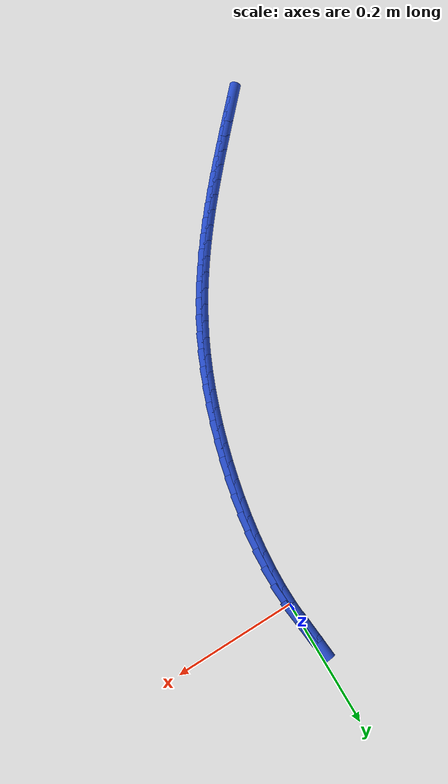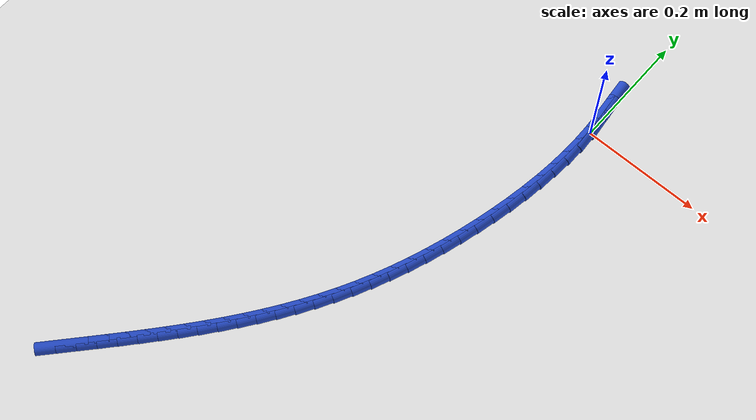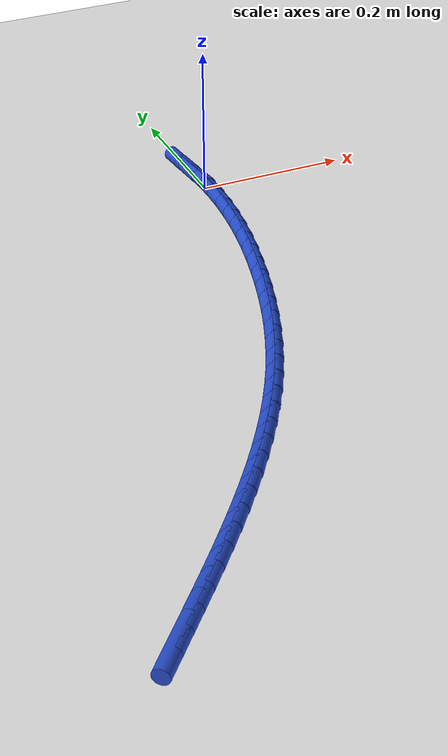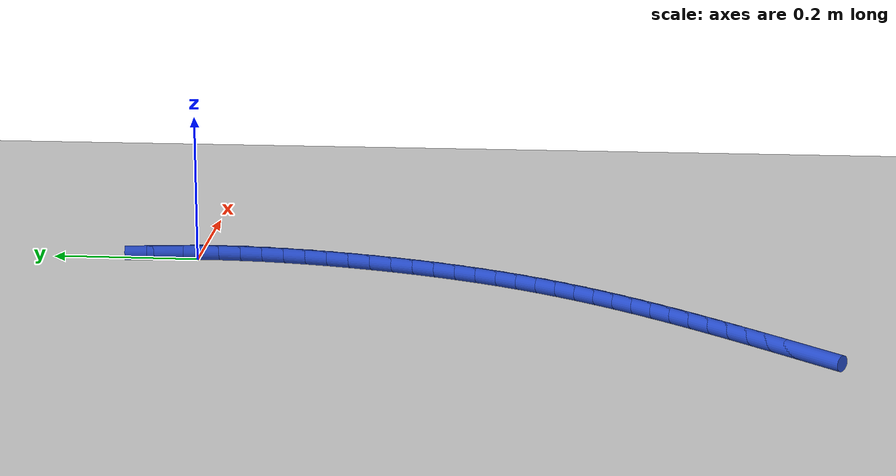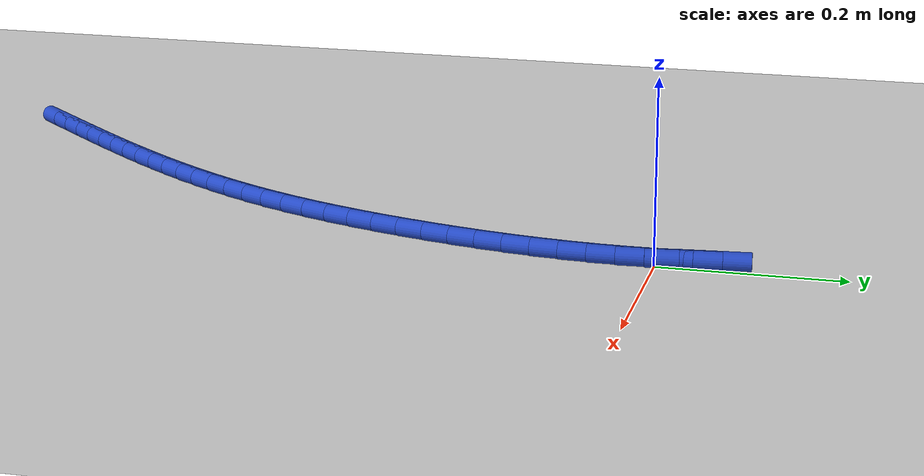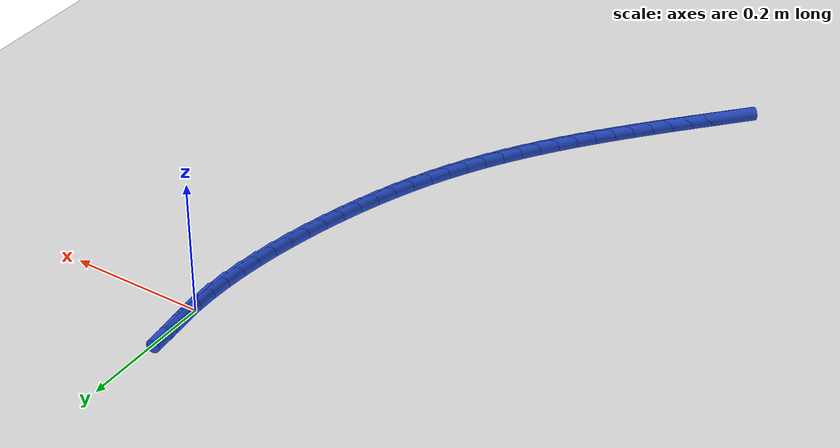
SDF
<sdf version="1.6">
 <world name="default">
  <model name="ground_plane">
   <static>1</static>
   <link name="link">
    <collision name="collision">
     <geometry><plane><normal>0 0 1</normal><size>100 100</size></plane></geometry>
     <surface><friction><ode><mu>100</mu><mu2>50</mu2></ode></friction></surface>
    </collision>
    <visual name="visual">
     <cast_shadows>0</cast_shadows>
     <geometry><plane><normal>0 0 1</normal><size>100 100</size></plane></geometry>
     <material>
      <script><uri>file://media/materials/scripts/gazebo.material</uri><name>Gazebo/WhiteGlow</name></script>
     </material>
    </visual>
   </link>
  </model>
  <model name="line">
   <link name="link_0">
    <pose>1.734723475976807e-18 -3.469446951953614e-17 0.01 0 1.57 -1.50605853895009</pose>
    <collision name="collision">
     <geometry><cylinder><radius>0.01</radius><length>0.08</length></cylinder></geometry>
    </collision>
    <visual name="visual">
     <material>
      <script><name>Gazebo/Blue</name><uri>file://media/materials/scripts/gazebo.material</uri></script>
     </material>
     <geometry><cylinder><radius>0.01</radius><length>0.08</length></cylinder></geometry>
    </visual>
   </link>
   <link name="link_1">
    <pose>-0.001937820754875449 0.029891550811262525 0.01 0 1.57 -1.4679281092160998</pose>
    <collision name="collision">
     <geometry><cylinder><radius>0.01</radius><length>0.08</length></cylinder></geometry>
    </collision>
    <visual name="visual">
     <material>
      <script><name>Gazebo/Blue</name><uri>file://media/materials/scripts/gazebo.material</uri></script>
     </material>
     <geometry><cylinder><radius>0.01</radius><length>0.08</length></cylinder></geometry>
    </visual>
   </link>
   <link name="link_250">
    <pose>-0.3695491545000588 -0.7978656069063355 0.01 0 1.57 0.8388789615420996</pose>
    <collision name="collision">
     <geometry><cylinder><radius>0.01</radius><length>0.08</length></cylinder></geometry>
    </collision>
    <visual name="visual">
     <material>
      <script><name>Gazebo/Blue</name><uri>file://media/materials/scripts/gazebo.material</uri></script>
     </material>
     <geometry><cylinder><radius>0.01</radius><length>0.08</length></cylinder></geometry>
    </visual>
   </link>
   <link name="link_251">
    <pose>-0.3489722872065502 -0.7749611015066138 0.01 0 1.57 0.8412058219241347</pose>
    <collision name="collision">
     <geometry><cylinder><radius>0.01</radius><length>0.08</length></cylinder></geometry>
    </collision>
    <visual name="visual">
     <material>
      <script><name>Gazebo/Blue</name><uri>file://media/materials/scripts/gazebo.material</uri></script>
     </material>
     <geometry><cylinder><radius>0.01</radius><length>0.08</length></cylinder></geometry>
    </visual>
   </link>
   <link name="link_252">
    <pose>-0.3286190941781523 -0.7521992581549323 0.01 0 1.57 0.8458893004438816</pose>
    <collision name="collision">
     <geometry><cylinder><radius>0.01</radius><length>0.08</length></cylinder></geometry>
    </collision>
    <visual name="visual">
     <material>
      <script><name>Gazebo/Blue</name><uri>file://media/materials/scripts/gazebo.material</uri></script>
     </material>
     <geometry><cylinder><radius>0.01</radius><length>0.08</length></cylinder></geometry>
    </visual>
   </link>
   <link name="link_253">
    <pose>-0.3085309796343642 -0.729520996869916 0.01 0 1.57 0.8529774565362893</pose>
    <collision name="collision">
     <geometry><cylinder><radius>0.01</radius><length>0.08</length></cylinder></geometry>
    </collision>
    <visual name="visual">
     <material>
      <script><name>Gazebo/Blue</name><uri>file://media/materials/scripts/gazebo.material</uri></script>
     </material>
     <geometry><cylinder><radius>0.01</radius><length>0.08</length></cylinder></geometry>
    </visual>
   </link>
   <link name="link_254">
    <pose>-0.28874934779468264 -0.7068672376701868 0.01 0 1.57 0.8625106540294004</pose>
    <collision name="collision">
     <geometry><cylinder><radius>0.01</radius><length>0.08</length></cylinder></geometry>
    </collision>
    <visual name="visual">
     <material>
      <script><name>Gazebo/Blue</name><uri>file://media/materials/scripts/gazebo.material</uri></script>
     </material>
     <geometry><cylinder><radius>0.01</radius><length>0.08</length></cylinder></geometry>
    </visual>
   </link>
   <link name="link_255">
    <pose>-0.2693156028786056 -0.6841789005743684 0.01 0 1.57 0.8745197772604651</pose>
    <collision name="collision">
     <geometry><cylinder><radius>0.01</radius><length>0.08</length></cylinder></geometry>
    </collision>
    <visual name="visual">
     <material>
      <script><name>Gazebo/Blue</name><uri>file://media/materials/scripts/gazebo.material</uri></script>
     </material>
     <geometry><cylinder><radius>0.01</radius><length>0.08</length></cylinder></geometry>
    </visual>
   </link>
   <link name="link_256">
    <pose>-0.2502711491056303 -0.6613969056010836 0.01 0 1.57 0.8890239883717835</pose>
    <collision name="collision">
     <geometry><cylinder><radius>0.01</radius><length>0.08</length></cylinder></geometry>
    </collision>
    <visual name="visual">
     <material>
      <script><name>Gazebo/Blue</name><uri>file://media/materials/scripts/gazebo.material</uri></script>
     </material>
     <geometry><cylinder><radius>0.01</radius><length>0.08</length></cylinder></geometry>
    </visual>
   </link>
   <link name="link_257">
    <pose>-0.23165739069525473 -0.6384621727689558 0.01 0 1.57 0.9060280472848489</pose>
    <collision name="collision">
     <geometry><cylinder><radius>0.01</radius><length>0.08</length></cylinder></geometry>
    </collision>
    <visual name="visual">
     <material>
      <script><name>Gazebo/Blue</name><uri>file://media/materials/scripts/gazebo.material</uri></script>
     </material>
     <geometry><cylinder><radius>0.01</radius><length>0.08</length></cylinder></geometry>
    </visual>
   </link>
   <link name="link_258">
    <pose>-0.21351573186697637 -0.615315622096608 0.01 0 1.57 0.925519259029566</pose>
    <collision name="collision">
     <geometry><cylinder><radius>0.01</radius><length>0.08</length></cylinder></geometry>
    </collision>
    <visual name="visual">
     <material>
      <script><name>Gazebo/Blue</name><uri>file://media/materials/scripts/gazebo.material</uri></script>
     </material>
     <geometry><cylinder><radius>0.01</radius><length>0.08</length></cylinder></geometry>
    </visual>
   </link>
   <link name="link_259">
    <pose>-0.19588757684029282 -0.5918981736026632 0.01 0 1.57 0.9474641675701972</pose>
    <collision name="collision">
     <geometry><cylinder><radius>0.01</radius><length>0.08</length></cylinder></geometry>
    </collision>
    <visual name="visual">
     <material>
      <script><name>Gazebo/Blue</name><uri>file://media/materials/scripts/gazebo.material</uri></script>
     </material>
     <geometry><cylinder><radius>0.01</radius><length>0.08</length></cylinder></geometry>
    </visual>
   </link>
   <link name="link_260">
    <pose>-0.17881432983470186 -0.5681507473057452 0.01 0 1.57 0.9718051789377452</pose>
    <collision name="collision">
     <geometry><cylinder><radius>0.01</radius><length>0.08</length></cylinder></geometry>
    </collision>
    <visual name="visual">
     <material>
      <script><name>Gazebo/Blue</name><uri>file://media/materials/scripts/gazebo.material</uri></script>
     </material>
     <geometry><cylinder><radius>0.01</radius><length>0.08</length></cylinder></geometry>
    </visual>
   </link>
   <link name="link_261">
    <pose>-0.1623373950697005 -0.5440142632244757 0.01 0 1.57 0.9984573640017742</pose>
    <collision name="collision">
     <geometry><cylinder><radius>0.01</radius><length>0.08</length></cylinder></geometry>
    </collision>
    <visual name="visual">
     <material>
      <script><name>Gazebo/Blue</name><uri>file://media/materials/scripts/gazebo.material</uri></script>
     </material>
     <geometry><cylinder><radius>0.01</radius><length>0.08</length></cylinder></geometry>
    </visual>
   </link>
   <link name="link_262">
    <pose>-0.1464981767647875 -0.51942964137748 0.01 0 1.57 1.0273057532964527</pose>
    <collision name="collision">
     <geometry><cylinder><radius>0.01</radius><length>0.08</length></cylinder></geometry>
    </collision>
    <visual name="visual">
     <material>
      <script><name>Gazebo/Blue</name><uri>file://media/materials/scripts/gazebo.material</uri></script>
     </material>
     <geometry><cylinder><radius>0.01</radius><length>0.08</length></cylinder></geometry>
    </visual>
   </link>
   <link name="link_263">
    <pose>-0.13133807913945986 -0.49433780178338005 0.01 0 1.57 1.0582034798217133</pose>
    <collision name="collision">
     <geometry><cylinder><radius>0.01</radius><length>0.08</length></cylinder></geometry>
    </collision>
    <visual name="visual">
     <material>
      <script><name>Gazebo/Blue</name><uri>file://media/materials/scripts/gazebo.material</uri></script>
     </material>
     <geometry><cylinder><radius>0.01</radius><length>0.08</length></cylinder></geometry>
    </visual>
   </link>
   <link name="link_264">
    <pose>-0.11689850641321536 -0.4686796644607993 0.01 0 1.57 1.0909711351671583</pose>
    <collision name="collision">
     <geometry><cylinder><radius>0.01</radius><length>0.08</length></cylinder></geometry>
    </collision>
    <visual name="visual">
     <material>
      <script><name>Gazebo/Blue</name><uri>file://media/materials/scripts/gazebo.material</uri></script>
     </material>
     <geometry><cylinder><radius>0.01</radius><length>0.08</length></cylinder></geometry>
    </visual>
   </link>
   <link name="link_265">
    <pose>-0.10322086280555154 -0.4423961494283606 0.01 0 1.57 1.1252254520843825</pose>
    <collision name="collision">
     <geometry><cylinder><radius>0.01</radius><length>0.08</length></cylinder></geometry>
    </collision>
    <visual name="visual">
     <material>
      <script><name>Gazebo/Blue</name><uri>file://media/materials/scripts/gazebo.material</uri></script>
     </material>
     <geometry><cylinder><radius>0.01</radius><length>0.08</length></cylinder></geometry>
    </visual>
   </link>
   <link name="link_266">
    <pose>-0.09034409138142369 -0.4154349647176527 0.01 0 1.57 1.1589350883989264</pose>
    <collision name="collision">
     <geometry><cylinder><radius>0.01</radius><length>0.08</length></cylinder></geometry>
    </collision>
    <visual name="visual">
     <material>
      <script><name>Gazebo/Blue</name><uri>file://media/materials/scripts/gazebo.material</uri></script>
     </material>
     <geometry><cylinder><radius>0.01</radius><length>0.08</length></cylinder></geometry>
    </visual>
   </link>
   <link name="link_267">
    <pose>-0.07828001055014083 -0.38781862979978654 0.01 0 1.57 1.1910433603873283</pose>
    <collision name="collision">
     <geometry><cylinder><radius>0.01</radius><length>0.08</length></cylinder></geometry>
    </collision>
    <visual name="visual">
     <material>
      <script><name>Gazebo/Blue</name><uri>file://media/materials/scripts/gazebo.material</uri></script>
     </material>
     <geometry><cylinder><radius>0.01</radius><length>0.08</length></cylinder></geometry>
    </visual>
   </link>
   <link name="link_268">
    <pose>-0.06702361976754395 -0.3596160518359739 0.01 0 1.57 1.221699392196436</pose>
    <collision name="collision">
     <geometry><cylinder><radius>0.01</radius><length>0.08</length></cylinder></geometry>
    </collision>
    <visual name="visual">
     <material>
      <script><name>Gazebo/Blue</name><uri>file://media/materials/scripts/gazebo.material</uri></script>
     </material>
     <geometry><cylinder><radius>0.01</radius><length>0.08</length></cylinder></geometry>
    </visual>
   </link>
   <link name="link_269">
    <pose>-0.056569667233075376 -0.33089683096775874 0.01 0 1.57 1.251062796547124</pose>
    <collision name="collision">
     <geometry><cylinder><radius>0.01</radius><length>0.08</length></cylinder></geometry>
    </collision>
    <visual name="visual">
     <material>
      <script><name>Gazebo/Blue</name><uri>file://media/materials/scripts/gazebo.material</uri></script>
     </material>
     <geometry><cylinder><radius>0.01</radius><length>0.08</length></cylinder></geometry>
    </visual>
   </link>
   <link name="link_270">
    <pose>-0.04691290114617715 -0.3017305673366839 0.01 0 1.57 1.2792861349362423</pose>
    <collision name="collision">
     <geometry><cylinder><radius>0.01</radius><length>0.08</length></cylinder></geometry>
    </collision>
    <visual name="visual">
     <material>
      <script><name>Gazebo/Blue</name><uri>file://media/materials/scripts/gazebo.material</uri></script>
     </material>
     <geometry><cylinder><radius>0.01</radius><length>0.08</length></cylinder></geometry>
    </visual>
   </link>
   <link name="link_271">
    <pose>-0.038048069706292154 -0.2721868610842948 0.01 0 1.57 1.306515371937303</pose>
    <collision name="collision">
     <geometry><cylinder><radius>0.01</radius><length>0.08</length></cylinder></geometry>
    </collision>
    <visual name="visual">
     <material>
      <script><name>Gazebo/Blue</name><uri>file://media/materials/scripts/gazebo.material</uri></script>
     </material>
     <geometry><cylinder><radius>0.01</radius><length>0.08</length></cylinder></geometry>
    </visual>
   </link>
   <link name="link_272">
    <pose>-0.029969921112862435 -0.24233531235213482 0.01 0 1.57 1.3329130991073246</pose>
    <collision name="collision">
     <geometry><cylinder><radius>0.01</radius><length>0.08</length></cylinder></geometry>
    </collision>
    <visual name="visual">
     <material>
      <script><name>Gazebo/Blue</name><uri>file://media/materials/scripts/gazebo.material</uri></script>
     </material>
     <geometry><cylinder><radius>0.01</radius><length>0.08</length></cylinder></geometry>
    </visual>
   </link>
   <link name="link_273">
    <pose>-0.022673900170707584 -0.21224544200761064 0.01 0 1.57 1.3598978936115158</pose>
    <collision name="collision">
     <geometry><cylinder><radius>0.01</radius><length>0.08</length></cylinder></geometry>
    </collision>
    <visual name="visual">
     <material>
      <script><name>Gazebo/Blue</name><uri>file://media/materials/scripts/gazebo.material</uri></script>
     </material>
     <geometry><cylinder><radius>0.01</radius><length>0.08</length></cylinder></geometry>
    </visual>
   </link>
   <link name="link_274">
    <pose>-0.01619510121359702 -0.1819822587764106 0.01 0 1.57 1.3895763531675978</pose>
    <collision name="collision">
     <geometry><cylinder><radius>0.01</radius><length>0.08</length></cylinder></geometry>
    </collision>
    <visual name="visual">
     <material>
      <script><name>Gazebo/Blue</name><uri>file://media/materials/scripts/gazebo.material</uri></script>
     </material>
     <geometry><cylinder><radius>0.01</radius><length>0.08</length></cylinder></geometry>
    </visual>
   </link>
   <link name="link_275">
    <pose>-0.010628871729519441 -0.15160391453678923 0.01 0 1.57 1.4222959010617542</pose>
    <collision name="collision">
     <geometry><cylinder><radius>0.01</radius><length>0.08</length></cylinder></geometry>
    </collision>
    <visual name="visual">
     <material>
      <script><name>Gazebo/Blue</name><uri>file://media/materials/scripts/gazebo.material</uri></script>
     </material>
     <geometry><cylinder><radius>0.01</radius><length>0.08</length></cylinder></geometry>
    </visual>
   </link>
   <link name="link_276">
    <pose>-0.006075604106914099 -0.12116798705410765 0.01 0 1.57 1.4582524582019039</pose>
    <collision name="collision">
     <geometry><cylinder><radius>0.01</radius><length>0.08</length></cylinder></geometry>
    </collision>
    <visual name="visual">
     <material>
      <script><name>Gazebo/Blue</name><uri>file://media/materials/scripts/gazebo.material</uri></script>
     </material>
     <geometry><cylinder><radius>0.01</radius><length>0.08</length></cylinder></geometry>
    </visual>
   </link>
   <link name="link_277">
    <pose>-0.002635690734220237 -0.09073205409372698 0.01 0 1.57 1.4976457510718832</pose>
    <collision name="collision">
     <geometry><cylinder><radius>0.01</radius><length>0.08</length></cylinder></geometry>
    </collision>
    <visual name="visual">
     <material>
      <script><name>Gazebo/Blue</name><uri>file://media/materials/scripts/gazebo.material</uri></script>
     </material>
     <geometry><cylinder><radius>0.01</radius><length>0.08</length></cylinder></geometry>
    </visual>
   </link>
   <link name="link_278">
    <pose>-0.0004095239998770936 -0.06035369342100818 0.01 0 1.57 1.5406689300266494</pose>
    <collision name="collision">
     <geometry><cylinder><radius>0.01</radius><length>0.08</length></cylinder></geometry>
    </collision>
    <visual name="visual">
     <material>
      <script><name>Gazebo/Blue</name><uri>file://media/materials/scripts/gazebo.material</uri></script>
     </material>
     <geometry><cylinder><radius>0.01</radius><length>0.08</length></cylinder></geometry>
    </visual>
   </link>
   <link name="link_279">
    <pose>0.0005025037076760866 -0.030090482801311522 0.01 0 1.57 -1.5540981233876427</pose>
    <collision name="collision">
     <geometry><cylinder><radius>0.01</radius><length>0.08</length></cylinder></geometry>
    </collision>
    <visual name="visual">
     <material>
      <script><name>Gazebo/Blue</name><uri>file://media/materials/scripts/gazebo.material</uri></script>
     </material>
     <geometry><cylinder><radius>0.01</radius><length>0.08</length></cylinder></geometry>
    </visual>
   </link>
   <link name="link_280">
    <pose>1.1275702593849246e-17 1.0408340855860843e-16 0.01 0 1.57 -1.5033363705454297</pose>
    <collision name="collision">
     <geometry><cylinder><radius>0.01</radius><length>0.08</length></cylinder></geometry>
    </collision>
    <visual name="visual">
     <material>
      <script><name>Gazebo/Blue</name><uri>file://media/materials/scripts/gazebo.material</uri></script>
     </material>
     <geometry><cylinder><radius>0.01</radius><length>0.08</length></cylinder></geometry>
    </visual>
   </link>
   <link name="link_281">
    <pose>-0.002017427511344527 0.02986017721756656 0.01 0 1.57 -1.4485658947031923</pose>
    <collision name="collision">
     <geometry><cylinder><radius>0.01</radius><length>0.08</length></cylinder></geometry>
    </collision>
    <visual name="visual">
     <material>
      <script><name>Gazebo/Blue</name><uri>file://media/materials/scripts/gazebo.material</uri></script>
     </material>
     <geometry><cylinder><radius>0.01</radius><length>0.08</length></cylinder></geometry>
    </visual>
   </link>
   <link name="link_282">
    <pose>-0.005650171214796761 0.059432471086026735 0.01 0 1.57 -1.4760124381753257</pose>
    <collision name="collision">
     <geometry><cylinder><radius>0.01</radius><length>0.08</length></cylinder></geometry>
    </collision>
    <visual name="visual">
     <material>
      <script><name>Gazebo/Blue</name><uri>file://media/materials/scripts/gazebo.material</uri></script>
     </material>
     <geometry><cylinder><radius>0.01</radius><length>0.08</length></cylinder></geometry>
    </visual>
   </link>
  </model>
 </world>
</sdf>
